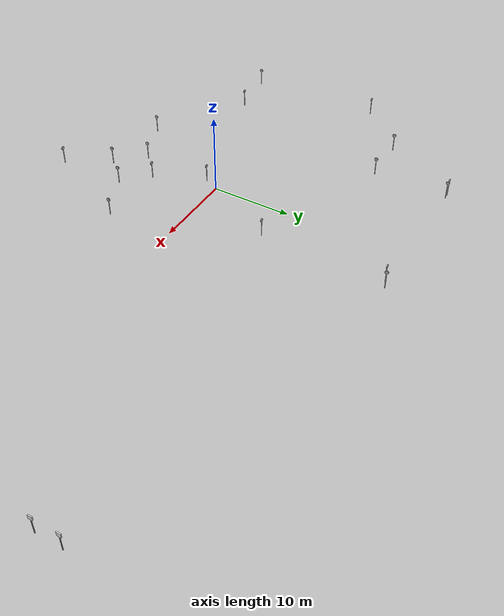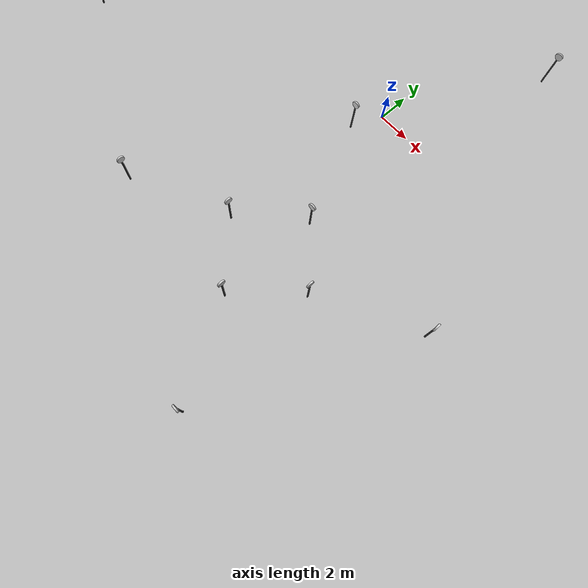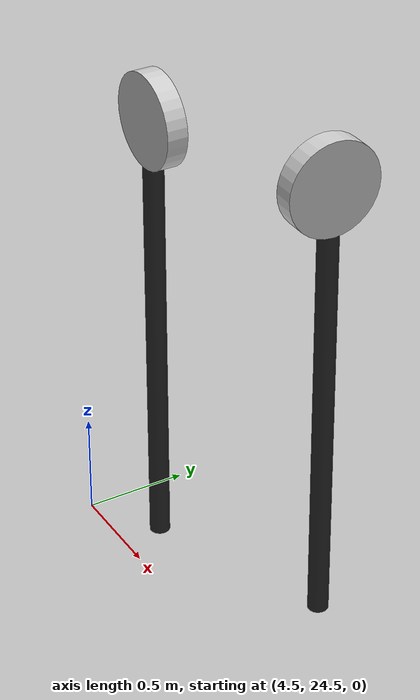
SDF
<sdf version="1.7">
 <world name="default">
  <light name="sun" type="directional">
   <pose>0 0 10 0 -0 0</pose>
   <diffuse>0.8 0.8 0.8 1</diffuse>
   <specular>0.2 0.2 0.2 1</specular>
   <attenuation>
    <range>1000</range>
    <constant>0.9</constant>
    <linear>0.01</linear>
    <quadratic>0.001</quadratic>
   </attenuation>
   <direction>-0.5 0.1 -0.9</direction>
   <spot><inner_angle>0</inner_angle><outer_angle>0</outer_angle><falloff>0</falloff></spot>
  </light>
  <gravity>0 0 -9.8</gravity>
  <magnetic_field>6e-06 2.3e-05 -4.2e-05</magnetic_field>
  <atmosphere type="adiabatic"/>
  <physics type="ode">
   <max_step_size>0.001</max_step_size>
   <real_time_factor>1</real_time_factor>
   <real_time_update_rate>1000</real_time_update_rate>
  </physics>
  <scene><ambient>0.4 0.4 0.4 1</ambient><background>0.7 0.7 0.7 1</background><shadows>1</shadows></scene>
  <spherical_coordinates>
   <surface_model>EARTH_WGS84</surface_model>
   <latitude_deg>0</latitude_deg>
   <longitude_deg>0</longitude_deg>
   <elevation>0</elevation>
   <heading_deg>0</heading_deg>
  </spherical_coordinates>
  <model name="Sign Sag">
   <static>1</static>
   <link name="link">
    <collision name="collision">
     <geometry><mesh><uri>model://sign_sag/meshes/model.dae</uri><scale>1 1 1</scale></mesh></geometry>
    </collision>
    <visual name="visual">
     <geometry><mesh><uri>model://sign_sag/meshes/model.dae</uri><scale>1 1 1</scale></mesh></geometry>
    </visual>
   </link>
   <pose>2.00467 -14.2705 0 0 -0 0</pose>
  </model>
  <light name="user_directional_light_0" type="directional">
   <pose>-2.50538 -21.004 1 0 -0 0</pose>
   <diffuse>0.5 0.5 0.5 1</diffuse>
   <specular>0.1 0.1 0.1 1</specular>
   <direction>0.1 0.1 -0.9</direction>
   <attenuation>
    <range>20</range>
    <constant>0.5</constant>
    <linear>0.01</linear>
    <quadratic>0.001</quadratic>
   </attenuation>
   <spot><inner_angle>0</inner_angle><outer_angle>0</outer_angle><falloff>0</falloff></spot>
  </light>
  <light name="user_directional_light_0_clone" type="directional">
   <pose>-3.87677 -20.3859 1 0 -0 0</pose>
   <diffuse>0.5 0.5 0.5 1</diffuse>
   <specular>0.1 0.1 0.1 1</specular>
   <direction>0.109764 0.109764 -0.987878</direction>
   <attenuation>
    <range>20</range>
    <constant>0.5</constant>
    <linear>0.01</linear>
    <quadratic>0.001</quadratic>
   </attenuation>
   <spot><inner_angle>0</inner_angle><outer_angle>0</outer_angle><falloff>0</falloff></spot>
  </light>
  <light name="user_directional_light_0_clone_1" type="directional">
   <pose>-6.43132 -21.3669 1 0 -0 0</pose>
   <diffuse>0.5 0.5 0.5 1</diffuse>
   <specular>0.1 0.1 0.1 1</specular>
   <direction>0.109764 0.109764 -0.987878</direction>
   <attenuation>
    <range>20</range>
    <constant>0.5</constant>
    <linear>0.01</linear>
    <quadratic>0.001</quadratic>
   </attenuation>
   <spot><inner_angle>0</inner_angle><outer_angle>0</outer_angle><falloff>0</falloff></spot>
  </light>
  <light name="user_directional_light_0_clone_0" type="directional">
   <pose>-8.74032 -21.6667 1 0 -0 0</pose>
   <diffuse>0.5 0.5 0.5 1</diffuse>
   <specular>0.1 0.1 0.1 1</specular>
   <direction>0.109764 0.109764 -0.987878</direction>
   <attenuation>
    <range>20</range>
    <constant>0.5</constant>
    <linear>0.01</linear>
    <quadratic>0.001</quadratic>
   </attenuation>
   <spot><inner_angle>0</inner_angle><outer_angle>0</outer_angle><falloff>0</falloff></spot>
  </light>
  <model name="Sign Sag_clone">
   <static>1</static>
   <link name="link">
    <collision name="collision">
     <geometry><mesh><uri>model://sign_sag/meshes/model.dae</uri><scale>1 1 1</scale></mesh></geometry>
    </collision>
    <visual name="visual">
     <geometry><mesh><uri>model://sign_sag/meshes/model.dae</uri><scale>1 1 1</scale></mesh></geometry>
    </visual>
   </link>
   <pose>5.01047 -11.0615 0 0 0 -4e-06</pose>
  </model>
  <model name="Sign Sag_clone_0">
   <static>1</static>
   <link name="link">
    <collision name="collision">
     <geometry><mesh><uri>model://sign_sag/meshes/model.dae</uri><scale>1 1 1</scale></mesh></geometry>
    </collision>
    <visual name="visual">
     <geometry><mesh><uri>model://sign_sag/meshes/model.dae</uri><scale>1 1 1</scale></mesh></geometry>
    </visual>
   </link>
   <pose>2.09518 -8.11421 0 0 -0 1.57079</pose>
  </model>
  <model name="Sign Sag_clone_clone">
   <static>1</static>
   <link name="link">
    <collision name="collision">
     <geometry><mesh><uri>model://sign_sag/meshes/model.dae</uri><scale>1 1 1</scale></mesh></geometry>
    </collision>
    <visual name="visual">
     <geometry><mesh><uri>model://sign_sag/meshes/model.dae</uri><scale>1 1 1</scale></mesh></geometry>
    </visual>
   </link>
   <pose>-1.08309 -11.0731 0 0 -0 3.14159</pose>
  </model>
  <model name="Sign Solamecburi">
   <static>1</static>
   <link name="link">
    <collision name="collision">
     <geometry><mesh><uri>model://sign_solamecburi/meshes/model.dae</uri><scale>1 1 1</scale></mesh></geometry>
    </collision>
    <visual name="visual">
     <geometry><mesh><uri>model://sign_solamecburi/meshes/model.dae</uri><scale>1 1 1</scale></mesh></geometry>
    </visual>
   </link>
   <pose>-25 -8 0 0 -0 0</pose>
  </model>
  <model name="Sign Park">
   <static>1</static>
   <link name="link">
    <collision name="collision">
     <geometry><mesh><uri>model://sign_park/meshes/model.dae</uri><scale>1 1 1</scale></mesh></geometry>
    </collision>
    <visual name="visual">
     <geometry><mesh><uri>model://sign_park/meshes/model.dae</uri><scale>1 1 1</scale></mesh></geometry>
    </visual>
   </link>
   <pose>46.7039 12.2981 0 0 0 -3.14159</pose>
  </model>
  <model name="Sign Park_clone">
   <static>1</static>
   <link name="link">
    <collision name="collision">
     <geometry><mesh><uri>model://sign_park/meshes/model.dae</uri><scale>1 1 1</scale></mesh></geometry>
    </collision>
    <visual name="visual">
     <geometry><mesh><uri>model://sign_park/meshes/model.dae</uri><scale>1 1 1</scale></mesh></geometry>
    </visual>
   </link>
   <pose>46.6761 15.2214 0 0 0 -3.14159</pose>
  </model>
  <model name="Sign Sagadonulmez">
   <static>1</static>
   <link name="link">
    <collision name="collision">
     <geometry><mesh><uri>model://sign_sagadonulmez/meshes/model.dae</uri><scale>1 1 1</scale></mesh></geometry>
    </collision>
    <visual name="visual">
     <geometry><mesh><uri>model://sign_sagadonulmez/meshes/model.dae</uri><scale>1 1 1</scale></mesh></geometry>
    </visual>
   </link>
   <pose>4.87889 9.33125 0 0 0 -1.5708</pose>
  </model>
  <model name="Sign Sagadonulmez_clone">
   <static>1</static>
   <link name="link">
    <collision name="collision">
     <geometry><mesh><uri>model://sign_sagadonulmez/meshes/model.dae</uri><scale>1 1 1</scale></mesh></geometry>
    </collision>
    <visual name="visual">
     <geometry><mesh><uri>model://sign_sagadonulmez/meshes/model.dae</uri><scale>1 1 1</scale></mesh></geometry>
    </visual>
   </link>
   <pose>4.82861 24.7526 0 0 0 -1.5708</pose>
  </model>
  <model name="Sign Sagadonulmez_clone_0">
   <static>1</static>
   <link name="link">
    <collision name="collision">
     <geometry><mesh><uri>model://sign_sagadonulmez/meshes/model.dae</uri><scale>1 1 1</scale></mesh></geometry>
    </collision>
    <visual name="visual">
     <geometry><mesh><uri>model://sign_sagadonulmez/meshes/model.dae</uri><scale>1 1 1</scale></mesh></geometry>
    </visual>
   </link>
   <pose>-13.153 25.026 0 0 0 -1.5708</pose>
  </model>
  <model name="Sign Solamecburi_clone">
   <static>1</static>
   <link name="link">
    <collision name="collision">
     <geometry><mesh><uri>model://sign_solamecburi/meshes/model.dae</uri><scale>1 1 1</scale></mesh></geometry>
    </collision>
    <visual name="visual">
     <geometry><mesh><uri>model://sign_solamecburi/meshes/model.dae</uri><scale>1 1 1</scale></mesh></geometry>
    </visual>
   </link>
   <pose>-12.8437 15.5443 0 0 -0 0</pose>
  </model>
  <model name="Sign Girisyok">
   <static>1</static>
   <link name="link">
    <collision name="collision">
     <geometry><mesh><uri>model://sign_girisyok/meshes/model.dae</uri><scale>1 1 1</scale></mesh></geometry>
    </collision>
    <visual name="visual">
     <geometry><mesh><uri>model://sign_girisyok/meshes/model.dae</uri><scale>1 1 1</scale></mesh></geometry>
    </visual>
   </link>
   <pose>-18.9521 15.3685 0 0 -0 0</pose>
  </model>
  <model name="Sign Donel">
   <static>1</static>
   <link name="link">
    <collision name="collision">
     <geometry><mesh><uri>model://sign_donel/meshes/model.dae</uri><scale>1 1 1</scale></mesh></geometry>
    </collision>
    <visual name="visual">
     <geometry><mesh><uri>model://sign_donel/meshes/model.dae</uri><scale>1 1 1</scale></mesh></geometry>
    </visual>
   </link>
   <pose>-6.86999 -13.7586 0 0 -0 3.14159</pose>
  </model>
  <model name="Sign Donel_clone">
   <static>1</static>
   <link name="link">
    <collision name="collision">
     <geometry><mesh><uri>model://sign_donel/meshes/model.dae</uri><scale>1 1 1</scale></mesh></geometry>
    </collision>
    <visual name="visual">
     <geometry><mesh><uri>model://sign_donel/meshes/model.dae</uri><scale>1 1 1</scale></mesh></geometry>
    </visual>
   </link>
   <pose>5.15474 -19.6152 0 0 0 -1.5708</pose>
  </model>
  <model name="Sign Donel_clone_0">
   <static>1</static>
   <link name="link">
    <collision name="collision">
     <geometry><mesh><uri>model://sign_donel/meshes/model.dae</uri><scale>1 1 1</scale></mesh></geometry>
    </collision>
    <visual name="visual">
     <geometry><mesh><uri>model://sign_donel/meshes/model.dae</uri><scale>1 1 1</scale></mesh></geometry>
    </visual>
   </link>
   <pose>-0.803569 -1.91213 0 0 -0 1.57079</pose>
  </model>
  <model name="Sign Donel_clone_0_clone">
   <static>1</static>
   <link name="link">
    <collision name="collision">
     <geometry><mesh><uri>model://sign_donel/meshes/model.dae</uri><scale>1 1 1</scale></mesh></geometry>
    </collision>
    <visual name="visual">
     <geometry><mesh><uri>model://sign_donel/meshes/model.dae</uri><scale>1 1 1</scale></mesh></geometry>
    </visual>
   </link>
   <pose>10.6516 -8.0474 0 0 0 -6e-06</pose>
  </model>
  <model name="Sign Solamecburi_clone_clone_clone">
   <static>1</static>
   <link name="link">
    <collision name="collision">
     <geometry><mesh><uri>model://sign_solamecburi/meshes/model.dae</uri><scale>1 1 1</scale></mesh></geometry>
    </collision>
    <visual name="visual">
     <geometry><mesh><uri>model://sign_solamecburi/meshes/model.dae</uri><scale>1 1 1</scale></mesh></geometry>
    </visual>
   </link>
   <pose>-12.6376 24.9921 0 0 -0 0</pose>
  </model>
  <model name="Sign Solamecburi_clone_0">
   <static>1</static>
   <link name="link">
    <collision name="collision">
     <geometry><mesh><uri>model://sign_solamecburi/meshes/model.dae</uri><scale>1 1 1</scale></mesh></geometry>
    </collision>
    <visual name="visual">
     <geometry><mesh><uri>model://sign_solamecburi/meshes/model.dae</uri><scale>1 1 1</scale></mesh></geometry>
    </visual>
   </link>
   <pose>-18.6488 -7.14945 0 0 -0 1.5708</pose>
  </model>
  <model name="Sign Sag_0">
   <static>1</static>
   <link name="link">
    <collision name="collision">
     <geometry><mesh><uri>model://sign_sag/meshes/model.dae</uri><scale>1 1 1</scale></mesh></geometry>
    </collision>
    <visual name="visual">
     <geometry><mesh><uri>model://sign_sag/meshes/model.dae</uri><scale>1 1 1</scale></mesh></geometry>
    </visual>
   </link>
   <pose>-25.6141 9.15787 0 0 0 -1.5708</pose>
  </model>
  <model name="Sign Solamecburi_clone_clone_clone_clone">
   <static>1</static>
   <link name="link">
    <collision name="collision">
     <geometry><mesh><uri>model://sign_solamecburi/meshes/model.dae</uri><scale>1 1 1</scale></mesh></geometry>
    </collision>
    <visual name="visual">
     <geometry><mesh><uri>model://sign_solamecburi/meshes/model.dae</uri><scale>1 1 1</scale></mesh></geometry>
    </visual>
   </link>
   <pose>5.67864 25.0448 0 0 -0 0</pose>
  </model>
 </world>
</sdf>
